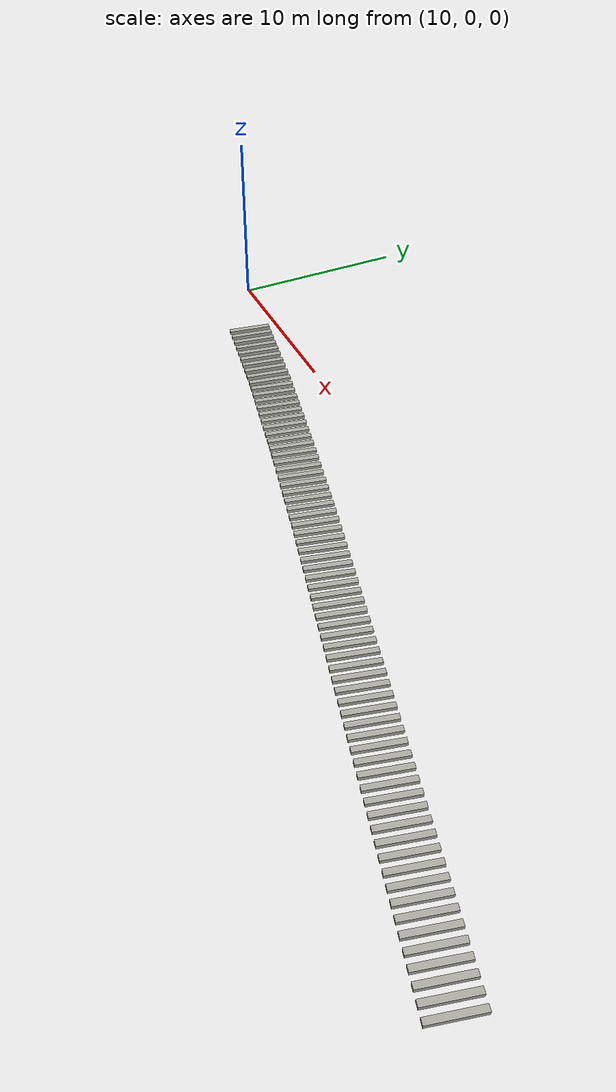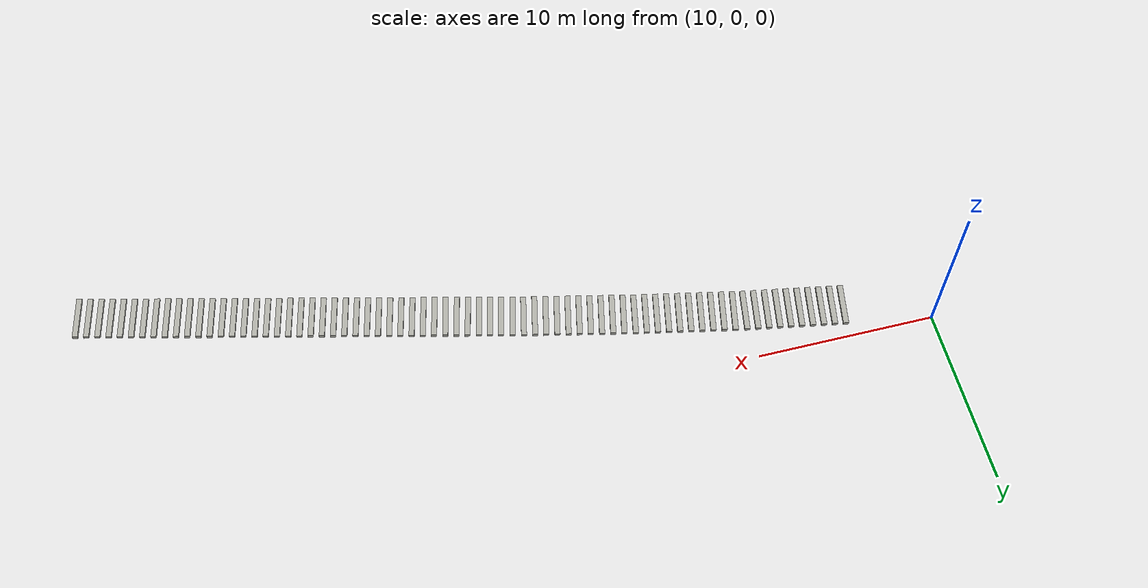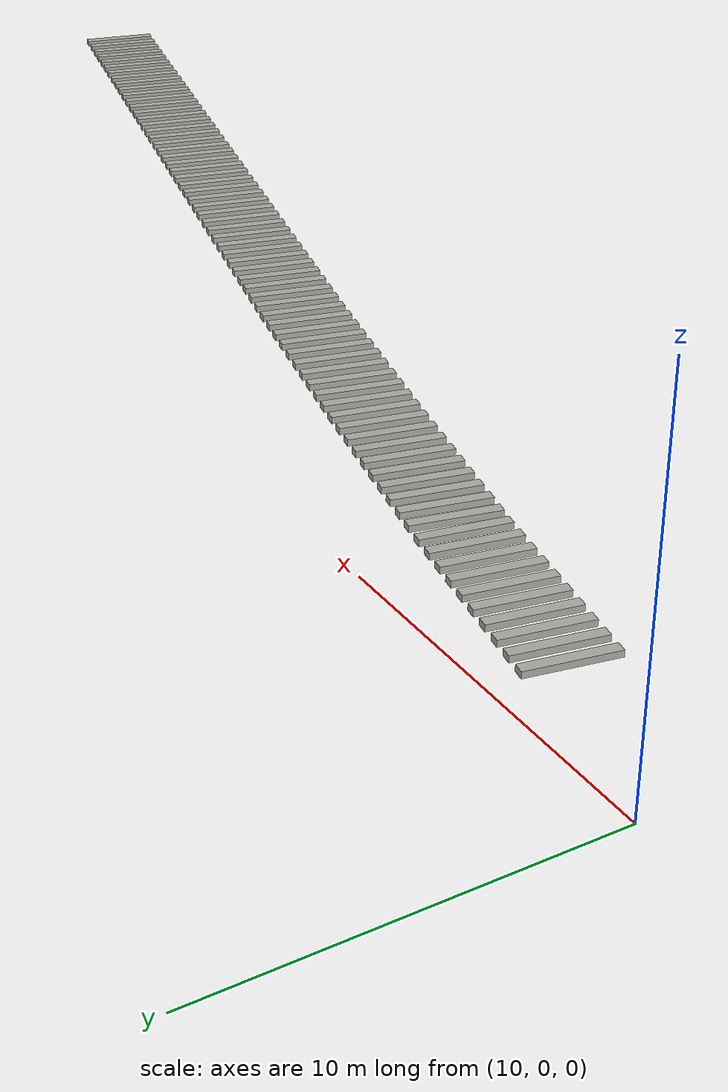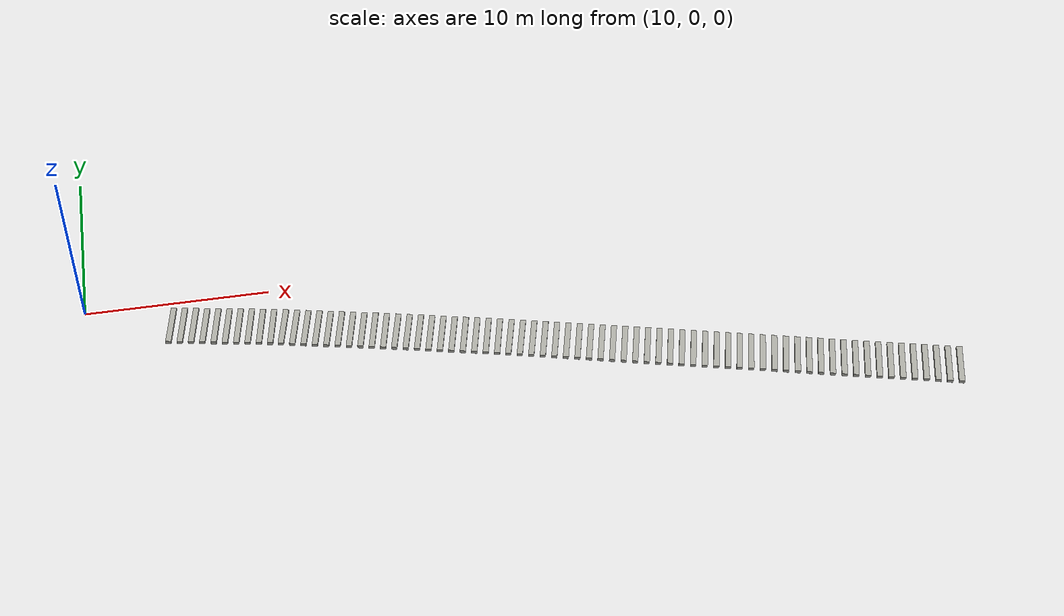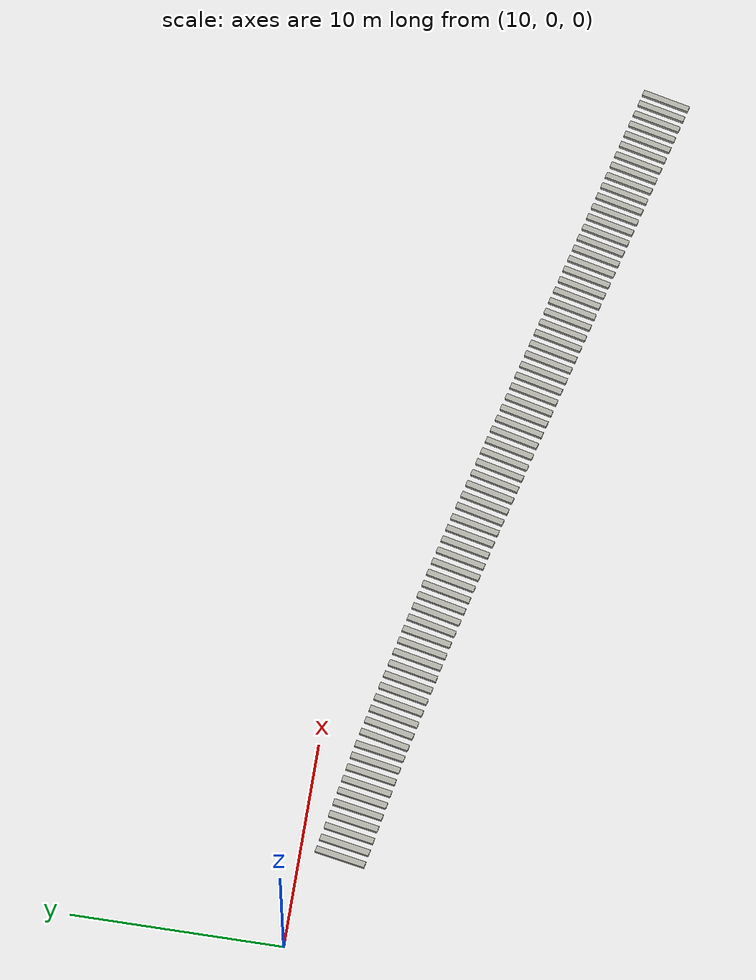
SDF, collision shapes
<sdf version="1.9">
 <model name="railway_turnout">
  <static>true</static>
  <plugin filename="gz-sim-label-system" name="gz::sim::systems::Label"><label>10</label></plugin>
  <include>
   <uri>model://pc_sleeper</uri>
   <name>branch_sleeper_051</name>
   <pose>20.600000 -2.980000 0.235000 0.000000 0.000000 -0.213369</pose>
  </include>
  <include>
   <uri>model://pc_sleeper</uri>
   <name>branch_sleeper_052</name>
   <pose>21.200000 -3.110000 0.235000 0.000000 0.000000 -0.213369</pose>
  </include>
  <include>
   <uri>model://pc_sleeper</uri>
   <name>branch_sleeper_053</name>
   <pose>21.800000 -3.240000 0.235000 0.000000 0.000000 -0.213369</pose>
  </include>
  <include>
   <uri>model://pc_sleeper</uri>
   <name>branch_sleeper_054</name>
   <pose>22.400000 -3.370000 0.235000 0.000000 0.000000 -0.213369</pose>
  </include>
  <include>
   <uri>model://pc_sleeper</uri>
   <name>branch_sleeper_055</name>
   <pose>23.000000 -3.500000 0.235000 0.000000 0.000000 -0.213369</pose>
  </include>
  <include>
   <uri>model://pc_sleeper</uri>
   <name>branch_sleeper_056</name>
   <pose>23.600000 -3.630000 0.235000 0.000000 0.000000 -0.213369</pose>
  </include>
  <include>
   <uri>model://pc_sleeper</uri>
   <name>branch_sleeper_057</name>
   <pose>24.200000 -3.760000 0.235000 0.000000 0.000000 -0.213369</pose>
  </include>
  <include>
   <uri>model://pc_sleeper</uri>
   <name>branch_sleeper_058</name>
   <pose>24.800000 -3.890000 0.235000 0.000000 0.000000 -0.213369</pose>
  </include>
  <include>
   <uri>model://pc_sleeper</uri>
   <name>branch_sleeper_059</name>
   <pose>25.400000 -4.020000 0.235000 0.000000 0.000000 -0.213369</pose>
  </include>
  <include>
   <uri>model://pc_sleeper</uri>
   <name>branch_sleeper_060</name>
   <pose>26.000000 -4.150000 0.235000 0.000000 0.000000 -0.213369</pose>
  </include>
  <include>
   <uri>model://pc_sleeper</uri>
   <name>branch_sleeper_061</name>
   <pose>26.600000 -4.290000 0.235000 0.000000 0.000000 -0.229232</pose>
  </include>
  <include>
   <uri>model://pc_sleeper</uri>
   <name>branch_sleeper_062</name>
   <pose>27.200000 -4.430000 0.235000 0.000000 0.000000 -0.229232</pose>
  </include>
  <include>
   <uri>model://pc_sleeper</uri>
   <name>branch_sleeper_063</name>
   <pose>27.800000 -4.570000 0.235000 0.000000 0.000000 -0.229232</pose>
  </include>
  <include>
   <uri>model://pc_sleeper</uri>
   <name>branch_sleeper_064</name>
   <pose>28.400000 -4.710000 0.235000 0.000000 0.000000 -0.229232</pose>
  </include>
  <include>
   <uri>model://pc_sleeper</uri>
   <name>branch_sleeper_065</name>
   <pose>29.000000 -4.850000 0.235000 0.000000 0.000000 -0.229232</pose>
  </include>
  <include>
   <uri>model://pc_sleeper</uri>
   <name>branch_sleeper_066</name>
   <pose>29.600000 -4.990000 0.235000 0.000000 0.000000 -0.229232</pose>
  </include>
  <include>
   <uri>model://pc_sleeper</uri>
   <name>branch_sleeper_067</name>
   <pose>30.200000 -5.130000 0.235000 0.000000 0.000000 -0.229232</pose>
  </include>
  <include>
   <uri>model://pc_sleeper</uri>
   <name>branch_sleeper_068</name>
   <pose>30.800000 -5.270000 0.235000 0.000000 0.000000 -0.229232</pose>
  </include>
  <include>
   <uri>model://pc_sleeper</uri>
   <name>branch_sleeper_069</name>
   <pose>31.400000 -5.410000 0.235000 0.000000 0.000000 -0.229232</pose>
  </include>
  <include>
   <uri>model://pc_sleeper</uri>
   <name>branch_sleeper_070</name>
   <pose>32.000000 -5.550000 0.235000 0.000000 0.000000 -0.229232</pose>
  </include>
  <include>
   <uri>model://pc_sleeper</uri>
   <name>branch_sleeper_071</name>
   <pose>32.600000 -5.700000 0.235000 0.000000 0.000000 -0.244979</pose>
  </include>
  <include>
   <uri>model://pc_sleeper</uri>
   <name>branch_sleeper_072</name>
   <pose>33.200000 -5.850000 0.235000 0.000000 0.000000 -0.244979</pose>
  </include>
  <include>
   <uri>model://pc_sleeper</uri>
   <name>branch_sleeper_073</name>
   <pose>33.800000 -6.000000 0.235000 0.000000 0.000000 -0.244979</pose>
  </include>
  <include>
   <uri>model://pc_sleeper</uri>
   <name>branch_sleeper_074</name>
   <pose>34.400000 -6.150000 0.235000 0.000000 0.000000 -0.244979</pose>
  </include>
  <include>
   <uri>model://pc_sleeper</uri>
   <name>branch_sleeper_075</name>
   <pose>35.000000 -6.300000 0.235000 0.000000 0.000000 -0.244979</pose>
  </include>
  <include>
   <uri>model://pc_sleeper</uri>
   <name>branch_sleeper_076</name>
   <pose>35.600000 -6.450000 0.235000 0.000000 0.000000 -0.244979</pose>
  </include>
  <include>
   <uri>model://pc_sleeper</uri>
   <name>branch_sleeper_077</name>
   <pose>36.200000 -6.600000 0.235000 0.000000 0.000000 -0.244979</pose>
  </include>
  <include>
   <uri>model://pc_sleeper</uri>
   <name>branch_sleeper_078</name>
   <pose>36.800000 -6.750000 0.235000 0.000000 0.000000 -0.244979</pose>
  </include>
  <include>
   <uri>model://pc_sleeper</uri>
   <name>branch_sleeper_079</name>
   <pose>37.400000 -6.900000 0.235000 0.000000 0.000000 -0.244979</pose>
  </include>
  <include>
   <uri>model://pc_sleeper</uri>
   <name>branch_sleeper_080</name>
   <pose>38.000000 -7.050000 0.235000 0.000000 0.000000 -0.244979</pose>
  </include>
  <include>
   <uri>model://pc_sleeper</uri>
   <name>branch_sleeper_081</name>
   <pose>38.600000 -7.200000 0.235000 0.000000 0.000000 -0.244979</pose>
  </include>
  <include>
   <uri>model://pc_sleeper</uri>
   <name>branch_sleeper_082</name>
   <pose>39.200000 -7.350000 0.235000 0.000000 0.000000 -0.244979</pose>
  </include>
  <include>
   <uri>model://pc_sleeper</uri>
   <name>branch_sleeper_083</name>
   <pose>39.800000 -7.500000 0.235000 0.000000 0.000000 -0.244979</pose>
  </include>
  <include>
   <uri>model://pc_sleeper</uri>
   <name>branch_sleeper_084</name>
   <pose>40.400000 -7.650000 0.235000 0.000000 0.000000 -0.244979</pose>
  </include>
  <include>
   <uri>model://pc_sleeper</uri>
   <name>branch_sleeper_085</name>
   <pose>41.000000 -7.800000 0.235000 0.000000 0.000000 -0.244979</pose>
  </include>
  <include>
   <uri>model://pc_sleeper</uri>
   <name>branch_sleeper_086</name>
   <pose>41.600000 -7.950000 0.235000 0.000000 0.000000 -0.244979</pose>
  </include>
  <include>
   <uri>model://pc_sleeper</uri>
   <name>branch_sleeper_087</name>
   <pose>42.200000 -8.100000 0.235000 0.000000 0.000000 -0.244979</pose>
  </include>
  <include>
   <uri>model://pc_sleeper</uri>
   <name>branch_sleeper_088</name>
   <pose>42.800000 -8.250000 0.235000 0.000000 0.000000 -0.244979</pose>
  </include>
  <include>
   <uri>model://pc_sleeper</uri>
   <name>branch_sleeper_089</name>
   <pose>43.400000 -8.400000 0.235000 0.000000 0.000000 -0.244979</pose>
  </include>
  <include>
   <uri>model://pc_sleeper</uri>
   <name>branch_sleeper_090</name>
   <pose>44.000000 -8.550000 0.235000 0.000000 0.000000 -0.244979</pose>
  </include>
  <include>
   <uri>model://pc_sleeper</uri>
   <name>branch_sleeper_091</name>
   <pose>44.600000 -8.700000 0.235000 0.000000 0.000000 -0.244979</pose>
  </include>
  <include>
   <uri>model://pc_sleeper</uri>
   <name>branch_sleeper_092</name>
   <pose>45.200000 -8.850000 0.235000 0.000000 0.000000 -0.244979</pose>
  </include>
  <include>
   <uri>model://pc_sleeper</uri>
   <name>branch_sleeper_093</name>
   <pose>45.800000 -9.000000 0.235000 0.000000 0.000000 -0.244979</pose>
  </include>
  <include>
   <uri>model://pc_sleeper</uri>
   <name>branch_sleeper_094</name>
   <pose>46.400000 -9.150000 0.235000 0.000000 0.000000 -0.244979</pose>
  </include>
  <include>
   <uri>model://pc_sleeper</uri>
   <name>branch_sleeper_095</name>
   <pose>47.000000 -9.300000 0.235000 0.000000 0.000000 -0.244979</pose>
  </include>
  <include>
   <uri>model://pc_sleeper</uri>
   <name>branch_sleeper_096</name>
   <pose>47.600000 -9.450000 0.235000 0.000000 0.000000 -0.244979</pose>
  </include>
  <include>
   <uri>model://pc_sleeper</uri>
   <name>branch_sleeper_097</name>
   <pose>48.200000 -9.600000 0.235000 0.000000 0.000000 -0.244979</pose>
  </include>
  <include>
   <uri>model://pc_sleeper</uri>
   <name>branch_sleeper_098</name>
   <pose>48.800000 -9.750000 0.235000 0.000000 0.000000 -0.244979</pose>
  </include>
  <include>
   <uri>model://pc_sleeper</uri>
   <name>branch_sleeper_099</name>
   <pose>49.400000 -9.900000 0.235000 0.000000 0.000000 -0.244979</pose>
  </include>
  <include>
   <uri>model://pc_sleeper</uri>
   <name>branch_sleeper_100</name>
   <pose>50.000000 -10.050000 0.235000 0.000000 0.000000 -0.244979</pose>
  </include>
  <include>
   <uri>model://pc_sleeper</uri>
   <name>branch_sleeper_101</name>
   <pose>50.600000 -10.200000 0.235000 0.000000 0.000000 -0.244979</pose>
  </include>
  <include>
   <uri>model://pc_sleeper</uri>
   <name>branch_sleeper_102</name>
   <pose>51.200000 -10.350000 0.235000 0.000000 0.000000 -0.244979</pose>
  </include>
  <include>
   <uri>model://pc_sleeper</uri>
   <name>branch_sleeper_103</name>
   <pose>51.800000 -10.500000 0.235000 0.000000 0.000000 -0.244979</pose>
  </include>
  <include>
   <uri>model://pc_sleeper</uri>
   <name>branch_sleeper_104</name>
   <pose>52.400000 -10.650000 0.235000 0.000000 0.000000 -0.244979</pose>
  </include>
  <include>
   <uri>model://pc_sleeper</uri>
   <name>branch_sleeper_105</name>
   <pose>53.000000 -10.800000 0.235000 0.000000 0.000000 -0.244979</pose>
  </include>
  <include>
   <uri>model://pc_sleeper</uri>
   <name>branch_sleeper_106</name>
   <pose>53.600000 -10.950000 0.235000 0.000000 0.000000 -0.244979</pose>
  </include>
  <include>
   <uri>model://pc_sleeper</uri>
   <name>branch_sleeper_107</name>
   <pose>54.200000 -11.100000 0.235000 0.000000 0.000000 -0.244979</pose>
  </include>
  <include>
   <uri>model://pc_sleeper</uri>
   <name>branch_sleeper_108</name>
   <pose>54.800000 -11.250000 0.235000 0.000000 0.000000 -0.244979</pose>
  </include>
  <include>
   <uri>model://pc_sleeper</uri>
   <name>branch_sleeper_109</name>
   <pose>55.400000 -11.400000 0.235000 0.000000 0.000000 -0.244979</pose>
  </include>
  <include>
   <uri>model://pc_sleeper</uri>
   <name>branch_sleeper_110</name>
   <pose>56.000000 -11.550000 0.235000 0.000000 0.000000 -0.244979</pose>
  </include>
  <include>
   <uri>model://pc_sleeper</uri>
   <name>branch_sleeper_041</name>
   <pose>14.600000 -1.860000 0.235000 0.000000 0.000000 -0.181320</pose>
  </include>
  <include>
   <uri>model://pc_sleeper</uri>
   <name>branch_sleeper_042</name>
   <pose>15.200000 -1.970000 0.235000 0.000000 0.000000 -0.181320</pose>
  </include>
  <include>
   <uri>model://pc_sleeper</uri>
   <name>branch_sleeper_043</name>
   <pose>15.800000 -2.080000 0.235000 0.000000 0.000000 -0.181320</pose>
  </include>
  <include>
   <uri>model://pc_sleeper</uri>
   <name>branch_sleeper_044</name>
   <pose>16.400000 -2.190000 0.235000 0.000000 0.000000 -0.181320</pose>
  </include>
  <include>
   <uri>model://pc_sleeper</uri>
   <name>branch_sleeper_045</name>
   <pose>17.000000 -2.300000 0.235000 0.000000 0.000000 -0.181320</pose>
  </include>
  <include>
   <uri>model://pc_sleeper</uri>
   <name>branch_sleeper_046</name>
   <pose>17.600000 -2.410000 0.235000 0.000000 0.000000 -0.181320</pose>
  </include>
  <include>
   <uri>model://pc_sleeper</uri>
   <name>branch_sleeper_047</name>
   <pose>18.200000 -2.520000 0.235000 0.000000 0.000000 -0.181320</pose>
  </include>
  <include>
   <uri>model://pc_sleeper</uri>
   <name>branch_sleeper_048</name>
   <pose>18.800000 -2.630000 0.235000 0.000000 0.000000 -0.181320</pose>
  </include>
  <include>
   <uri>model://pc_sleeper</uri>
   <name>branch_sleeper_049</name>
   <pose>19.400000 -2.740000 0.235000 0.000000 0.000000 -0.181320</pose>
  </include>
  <include>
   <uri>model://pc_sleeper</uri>
   <name>branch_sleeper_050</name>
   <pose>20.000000 -2.850000 0.235000 0.000000 0.000000 -0.181320</pose>
  </include>
 </model>
</sdf>
